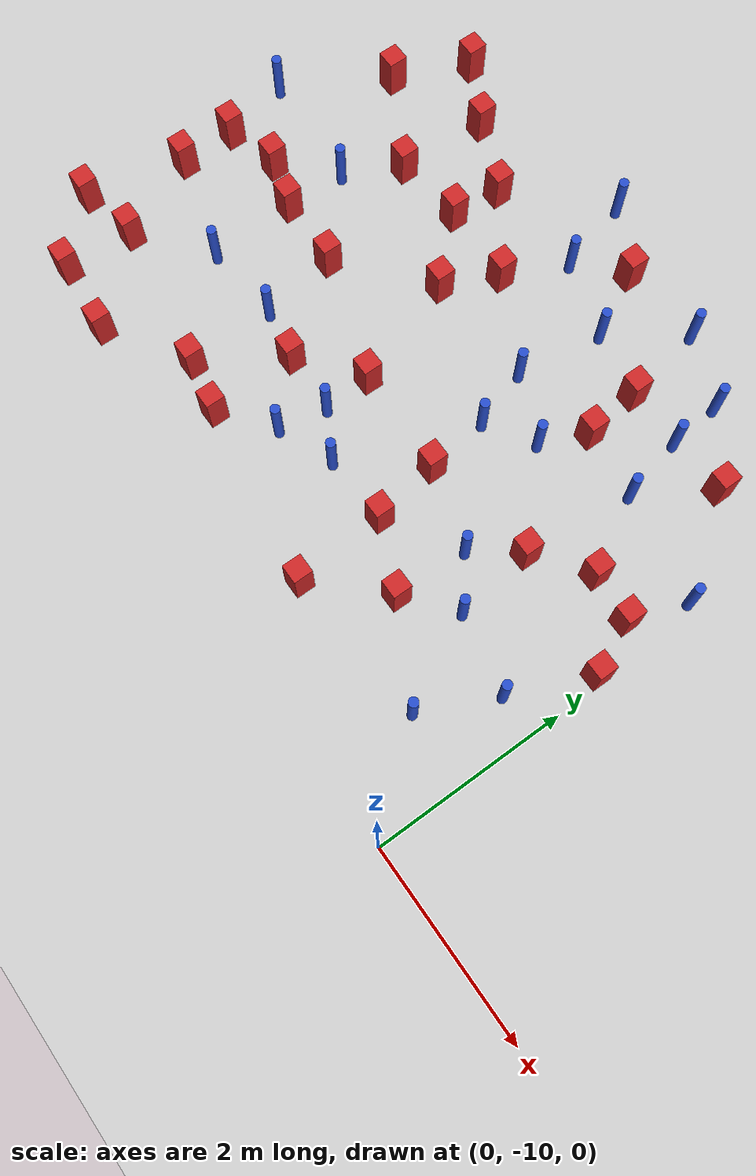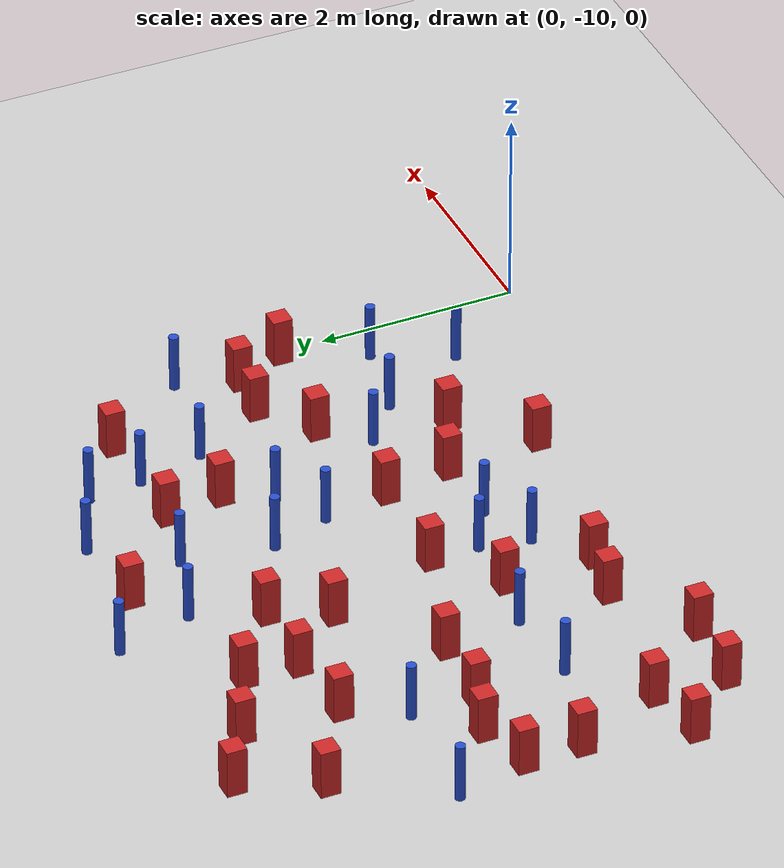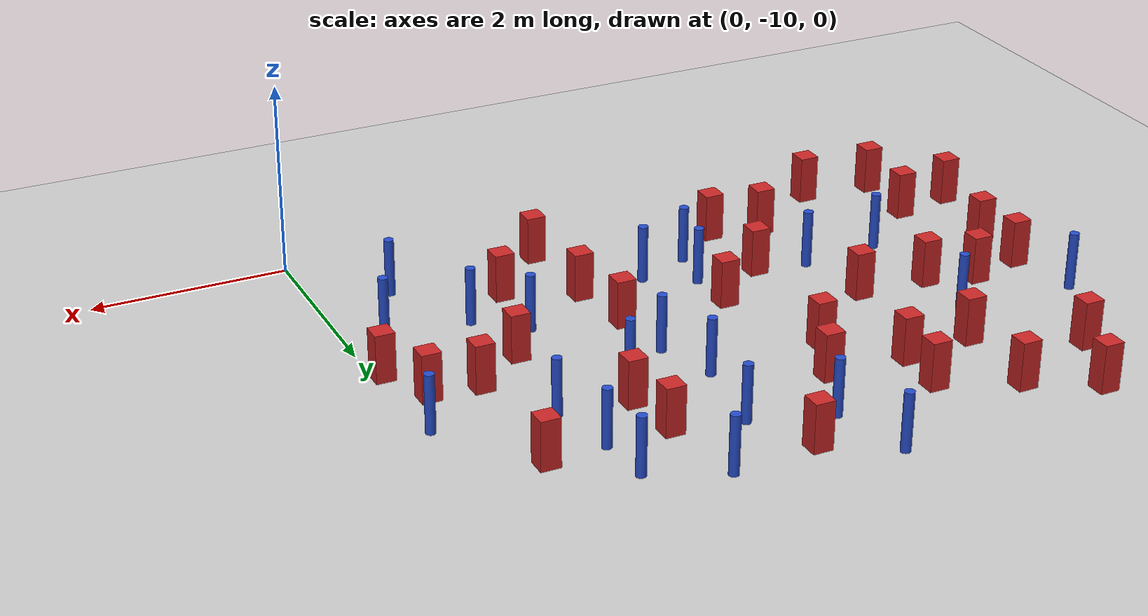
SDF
<sdf version="1.6">
 <world name="default">
  <model name="ground_plane">
   <static>1</static>
   <link name="link">
    <collision name="collision">
     <geometry><plane><normal>0 0 1</normal><size>100 100</size></plane></geometry>
     <surface><friction><ode><mu>100</mu><mu2>50</mu2></ode></friction></surface>
    </collision>
    <visual name="visual">
     <cast_shadows>0</cast_shadows>
     <geometry><plane><normal>0 0 1</normal><size>100 100</size></plane></geometry>
     <material>
      <ambient>1.0 1.0 1.0 1.0</ambient>
      <diffuse>0.8 0.8 0.8 1.0</diffuse>
      <specular>0.01 0.01 0.01 1.000000</specular>
     </material>
    </visual>
   </link>
  </model>
  <model name="square_post_obstacle2">
   <static>true</static>
   <pose>-4.26368688177 -8.88945568207 -6.11067671241e-07 -5.50515727128e-06 -8.79689657224e-07 2.37013304536e-05</pose>
   <link name="link">
    <pose>0 0 0.25 0 -0 0</pose>
    <inertial>
     <mass>100</mass>
     <inertia>
      <ixx>0.166667</ixx>
      <ixy>0</ixy>
      <ixz>0</ixz>
      <iyy>0.166667</iyy>
      <iyz>0</iyz>
      <izz>0.166667</izz>
     </inertia>
    </inertial>
    <collision name="collision"><geometry><box><size>.2 .2 .5</size></box></geometry></collision>
    <visual name="visual">
     <geometry><box><size>.2 .2 .5</size></box></geometry>
     <material>
      <script><name>Gazebo/Red</name><uri>file://media/materials/scripts/gazebo.material</uri></script>
     </material>
    </visual>
   </link>
  </model>
  <model name="pole_obstacle4">
   <static>true</static>
   <pose>-2.65251913917 -6.87422880931 -9.47619616065e-06 5.49618799738e-07 2.3631041406e-07 -1.55090534801e-07</pose>
   <link name="link">
    <pose>0 0 0.3 0 -0 0</pose>
    <inertial>
     <mass>1</mass>
     <inertia><ixx>0.145833</ixx><ixy>0</ixy><ixz>0</ixz><iyy>0.145833</iyy><iyz>0</iyz><izz>0.125</izz></inertia>
    </inertial>
    <collision name="collision">
     <geometry><cylinder><radius>0.05</radius><length>.6</length></cylinder></geometry>
    </collision>
    <visual name="visual">
     <geometry><cylinder><radius>0.05</radius><length>.6</length></cylinder></geometry>
     <material>
      <script><name>Gazebo/Blue</name><uri>file://media/materials/scripts/gazebo.material</uri></script>
     </material>
    </visual>
   </link>
  </model>
  <model name="pole_obstacle6">
   <static>true</static>
   <pose>-1.71180021635 -7.7803199983 -9.47619616065e-06 5.49618799737e-07 2.36310414061e-07 -1.550905348e-07</pose>
   <link name="link">
    <pose>0 0 0.3 0 -0 0</pose>
    <inertial>
     <mass>1</mass>
     <inertia><ixx>0.145833</ixx><ixy>0</ixy><ixz>0</ixz><iyy>0.145833</iyy><iyz>0</iyz><izz>0.125</izz></inertia>
    </inertial>
    <collision name="collision">
     <geometry><cylinder><radius>0.05</radius><length>.6</length></cylinder></geometry>
    </collision>
    <visual name="visual">
     <geometry><cylinder><radius>0.05</radius><length>.6</length></cylinder></geometry>
     <material>
      <script><name>Gazebo/Blue</name><uri>file://media/materials/scripts/gazebo.material</uri></script>
     </material>
    </visual>
   </link>
  </model>
  <model name="square_post_obstacle20">
   <static>true</static>
   <pose>-5.98654859498 -4.50883899803 -6.11067671241e-07 -5.50515727128e-06 -8.79689657224e-07 2.37013304536e-05</pose>
   <link name="link">
    <pose>0 0 0.25 0 -0 0</pose>
    <inertial>
     <mass>100</mass>
     <inertia>
      <ixx>0.166667</ixx>
      <ixy>0</ixy>
      <ixz>0</ixz>
      <iyy>0.166667</iyy>
      <iyz>0</iyz>
      <izz>0.166667</izz>
     </inertia>
    </inertial>
    <collision name="collision"><geometry><box><size>.2 .2 .5</size></box></geometry></collision>
    <visual name="visual">
     <geometry><box><size>.2 .2 .5</size></box></geometry>
     <material>
      <script><name>Gazebo/Red</name><uri>file://media/materials/scripts/gazebo.material</uri></script>
     </material>
    </visual>
   </link>
  </model>
  <model name="square_post_obstacle25">
   <static>true</static>
   <pose>-0.0867028003997 -7.50894193678 -6.11067671241e-07 -5.50515727128e-06 -8.79689657224e-07 2.37013304536e-05</pose>
   <link name="link">
    <pose>0 0 0.25 0 -0 0</pose>
    <inertial>
     <mass>100</mass>
     <inertia>
      <ixx>0.166667</ixx>
      <ixy>0</ixy>
      <ixz>0</ixz>
      <iyy>0.166667</iyy>
      <iyz>0</iyz>
      <izz>0.166667</izz>
     </inertia>
    </inertial>
    <collision name="collision"><geometry><box><size>.2 .2 .5</size></box></geometry></collision>
    <visual name="visual">
     <geometry><box><size>.2 .2 .5</size></box></geometry>
     <material>
      <script><name>Gazebo/Red</name><uri>file://media/materials/scripts/gazebo.material</uri></script>
     </material>
    </visual>
   </link>
  </model>
  <model name="pole_obstacle19">
   <static>true</static>
   <pose>-0.420252584287 -8.31891217827 -9.47619616065e-06 5.49618799737e-07 2.36310414031e-07 -1.55090534818e-07</pose>
   <link name="link">
    <pose>0 0 0.3 0 -0 0</pose>
    <inertial>
     <mass>1</mass>
     <inertia><ixx>0.145833</ixx><ixy>0</ixy><ixz>0</ixz><iyy>0.145833</iyy><iyz>0</iyz><izz>0.125</izz></inertia>
    </inertial>
    <collision name="collision">
     <geometry><cylinder><radius>0.05</radius><length>.6</length></cylinder></geometry>
    </collision>
    <visual name="visual">
     <geometry><cylinder><radius>0.05</radius><length>.6</length></cylinder></geometry>
     <material>
      <script><name>Gazebo/Blue</name><uri>file://media/materials/scripts/gazebo.material</uri></script>
     </material>
    </visual>
   </link>
  </model>
  <model name="pole_obstacle27">
   <static>true</static>
   <pose>-1.41031372814 -5.51074239256 -9.47619616065e-06 5.49618799737e-07 2.36310414061e-07 -1.550905348e-07</pose>
   <link name="link">
    <pose>0 0 0.3 0 -0 0</pose>
    <inertial>
     <mass>1</mass>
     <inertia><ixx>0.145833</ixx><ixy>0</ixy><ixz>0</ixz><iyy>0.145833</iyy><iyz>0</iyz><izz>0.125</izz></inertia>
    </inertial>
    <collision name="collision">
     <geometry><cylinder><radius>0.05</radius><length>.6</length></cylinder></geometry>
    </collision>
    <visual name="visual">
     <geometry><cylinder><radius>0.05</radius><length>.6</length></cylinder></geometry>
     <material>
      <script><name>Gazebo/Blue</name><uri>file://media/materials/scripts/gazebo.material</uri></script>
     </material>
    </visual>
   </link>
  </model>
  <model name="pole_obstacle36">
   <static>true</static>
   <pose>-1.24522728171 -6.18781245235 -9.47619616065e-06 5.49618799737e-07 2.36310414061e-07 -1.550905348e-07</pose>
   <link name="link">
    <pose>0 0 0.3 0 -0 0</pose>
    <inertial>
     <mass>1</mass>
     <inertia><ixx>0.145833</ixx><ixy>0</ixy><ixz>0</ixz><iyy>0.145833</iyy><iyz>0</iyz><izz>0.125</izz></inertia>
    </inertial>
    <collision name="collision">
     <geometry><cylinder><radius>0.05</radius><length>.6</length></cylinder></geometry>
    </collision>
    <visual name="visual">
     <geometry><cylinder><radius>0.05</radius><length>.6</length></cylinder></geometry>
     <material>
      <script><name>Gazebo/Blue</name><uri>file://media/materials/scripts/gazebo.material</uri></script>
     </material>
    </visual>
   </link>
  </model>
  <model name="square_post_obstacle36">
   <static>true</static>
   <pose>-6.7682676209 -7.01912997487 -6.11067671241e-07 -5.50515727128e-06 -8.79689657224e-07 2.37013304536e-05</pose>
   <link name="link">
    <pose>0 0 0.25 0 -0 0</pose>
    <inertial>
     <mass>100</mass>
     <inertia>
      <ixx>0.166667</ixx>
      <ixy>0</ixy>
      <ixz>0</ixz>
      <iyy>0.166667</iyy>
      <iyz>0</iyz>
      <izz>0.166667</izz>
     </inertia>
    </inertial>
    <collision name="collision"><geometry><box><size>.2 .2 .5</size></box></geometry></collision>
    <visual name="visual">
     <geometry><box><size>.2 .2 .5</size></box></geometry>
     <material>
      <script><name>Gazebo/Red</name><uri>file://media/materials/scripts/gazebo.material</uri></script>
     </material>
    </visual>
   </link>
  </model>
  <model name="square_post_obstacle37">
   <static>true</static>
   <pose>-6.2001604014 -6.87545379439 -6.11067671241e-07 -5.50515727128e-06 -8.79689657224e-07 2.37013304536e-05</pose>
   <link name="link">
    <pose>0 0 0.25 0 -0 0</pose>
    <inertial>
     <mass>100</mass>
     <inertia>
      <ixx>0.166667</ixx>
      <ixy>0</ixy>
      <ixz>0</ixz>
      <iyy>0.166667</iyy>
      <iyz>0</iyz>
      <izz>0.166667</izz>
     </inertia>
    </inertial>
    <collision name="collision"><geometry><box><size>.2 .2 .5</size></box></geometry></collision>
    <visual name="visual">
     <geometry><box><size>.2 .2 .5</size></box></geometry>
     <material>
      <script><name>Gazebo/Red</name><uri>file://media/materials/scripts/gazebo.material</uri></script>
     </material>
    </visual>
   </link>
  </model>
  <model name="pole_obstacle38">
   <static>true</static>
   <pose>-2.16754230576 -6.57102361847 -9.47619616065e-06 5.49618799738e-07 2.3631041406e-07 -1.55090534801e-07</pose>
   <link name="link">
    <pose>0 0 0.3 0 -0 0</pose>
    <inertial>
     <mass>1</mass>
     <inertia><ixx>0.145833</ixx><ixy>0</ixy><ixz>0</ixz><iyy>0.145833</iyy><iyz>0</iyz><izz>0.125</izz></inertia>
    </inertial>
    <collision name="collision">
     <geometry><cylinder><radius>0.05</radius><length>.6</length></cylinder></geometry>
    </collision>
    <visual name="visual">
     <geometry><cylinder><radius>0.05</radius><length>.6</length></cylinder></geometry>
     <material>
      <script><name>Gazebo/Blue</name><uri>file://media/materials/scripts/gazebo.material</uri></script>
     </material>
    </visual>
   </link>
  </model>
  <model name="square_post_obstacle45">
   <static>true</static>
   <pose>-1.36718611681 -7.33663645452 -6.11067671241e-07 -5.50515727128e-06 -8.79689657224e-07 2.37013304536e-05</pose>
   <link name="link">
    <pose>0 0 0.25 0 -0 0</pose>
    <inertial>
     <mass>100</mass>
     <inertia>
      <ixx>0.166667</ixx>
      <ixy>0</ixy>
      <ixz>0</ixz>
      <iyy>0.166667</iyy>
      <iyz>0</iyz>
      <izz>0.166667</izz>
     </inertia>
    </inertial>
    <collision name="collision"><geometry><box><size>.2 .2 .5</size></box></geometry></collision>
    <visual name="visual">
     <geometry><box><size>.2 .2 .5</size></box></geometry>
     <material>
      <script><name>Gazebo/Red</name><uri>file://media/materials/scripts/gazebo.material</uri></script>
     </material>
    </visual>
   </link>
  </model>
  <model name="pole_obstacle50">
   <static>true</static>
   <pose>-0.771396174465 -9.06985725789 -9.47619616065e-06 5.49618799737e-07 2.36310414038e-07 -1.55090534813e-07</pose>
   <link name="link">
    <pose>0 0 0.3 0 -0 0</pose>
    <inertial>
     <mass>1</mass>
     <inertia><ixx>0.145833</ixx><ixy>0</ixy><ixz>0</ixz><iyy>0.145833</iyy><iyz>0</iyz><izz>0.125</izz></inertia>
    </inertial>
    <collision name="collision">
     <geometry><cylinder><radius>0.05</radius><length>.6</length></cylinder></geometry>
    </collision>
    <visual name="visual">
     <geometry><cylinder><radius>0.05</radius><length>.6</length></cylinder></geometry>
     <material>
      <script><name>Gazebo/Blue</name><uri>file://media/materials/scripts/gazebo.material</uri></script>
     </material>
    </visual>
   </link>
  </model>
  <model name="pole_obstacle55">
   <static>true</static>
   <pose>-5.69469708251 -6.38586778591 -9.47619616065e-06 5.49618799737e-07 2.36310414037e-07 -1.55090534814e-07</pose>
   <link name="link">
    <pose>0 0 0.3 0 -0 0</pose>
    <inertial>
     <mass>1</mass>
     <inertia><ixx>0.145833</ixx><ixy>0</ixy><ixz>0</ixz><iyy>0.145833</iyy><iyz>0</iyz><izz>0.125</izz></inertia>
    </inertial>
    <collision name="collision">
     <geometry><cylinder><radius>0.05</radius><length>.6</length></cylinder></geometry>
    </collision>
    <visual name="visual">
     <geometry><cylinder><radius>0.05</radius><length>.6</length></cylinder></geometry>
     <material>
      <script><name>Gazebo/Blue</name><uri>file://media/materials/scripts/gazebo.material</uri></script>
     </material>
    </visual>
   </link>
  </model>
  <model name="square_post_obstacle64">
   <static>true</static>
   <pose>-1.96166137287 -6.0991282528 -6.11067671241e-07 -5.50515727128e-06 -8.79689657224e-07 2.37013304536e-05</pose>
   <link name="link">
    <pose>0 0 0.25 0 -0 0</pose>
    <inertial>
     <mass>100</mass>
     <inertia>
      <ixx>0.166667</ixx>
      <ixy>0</ixy>
      <ixz>0</ixz>
      <iyy>0.166667</iyy>
      <iyz>0</iyz>
      <izz>0.166667</izz>
     </inertia>
    </inertial>
    <collision name="collision"><geometry><box><size>.2 .2 .5</size></box></geometry></collision>
    <visual name="visual">
     <geometry><box><size>.2 .2 .5</size></box></geometry>
     <material>
      <script><name>Gazebo/Red</name><uri>file://media/materials/scripts/gazebo.material</uri></script>
     </material>
    </visual>
   </link>
  </model>
  <model name="square_post_obstacle67">
   <static>true</static>
   <pose>-2.03801471484 -5.51106433307 -6.11067671241e-07 -5.50515727128e-06 -8.79689657224e-07 2.37013304536e-05</pose>
   <link name="link">
    <pose>0 0 0.25 0 -0 0</pose>
    <inertial>
     <mass>100</mass>
     <inertia>
      <ixx>0.166667</ixx>
      <ixy>0</ixy>
      <ixz>0</ixz>
      <iyy>0.166667</iyy>
      <iyz>0</iyz>
      <izz>0.166667</izz>
     </inertia>
    </inertial>
    <collision name="collision"><geometry><box><size>.2 .2 .5</size></box></geometry></collision>
    <visual name="visual">
     <geometry><box><size>.2 .2 .5</size></box></geometry>
     <material>
      <script><name>Gazebo/Red</name><uri>file://media/materials/scripts/gazebo.material</uri></script>
     </material>
    </visual>
   </link>
  </model>
  <model name="square_post_obstacle78">
   <static>true</static>
   <pose>-4.28863827498 -7.97021116407 -6.11067671241e-07 -5.50515727128e-06 -8.79689657224e-07 2.37013304536e-05</pose>
   <link name="link">
    <pose>0 0 0.25 0 -0 0</pose>
    <inertial>
     <mass>100</mass>
     <inertia>
      <ixx>0.166667</ixx>
      <ixy>0</ixy>
      <ixz>0</ixz>
      <iyy>0.166667</iyy>
      <iyz>0</iyz>
      <izz>0.166667</izz>
     </inertia>
    </inertial>
    <collision name="collision"><geometry><box><size>.2 .2 .5</size></box></geometry></collision>
    <visual name="visual">
     <geometry><box><size>.2 .2 .5</size></box></geometry>
     <material>
      <script><name>Gazebo/Red</name><uri>file://media/materials/scripts/gazebo.material</uri></script>
     </material>
    </visual>
   </link>
  </model>
  <model name="pole_obstacle83">
   <static>true</static>
   <pose>-4.82534411164 -7.86880731986 -9.47619616065e-06 5.49618799737e-07 2.36310414037e-07 -1.55090534814e-07</pose>
   <link name="link">
    <pose>0 0 0.3 0 -0 0</pose>
    <inertial>
     <mass>1</mass>
     <inertia><ixx>0.145833</ixx><ixy>0</ixy><ixz>0</ixz><iyy>0.145833</iyy><iyz>0</iyz><izz>0.125</izz></inertia>
    </inertial>
    <collision name="collision">
     <geometry><cylinder><radius>0.05</radius><length>.6</length></cylinder></geometry>
    </collision>
    <visual name="visual">
     <geometry><cylinder><radius>0.05</radius><length>.6</length></cylinder></geometry>
     <material>
      <script><name>Gazebo/Blue</name><uri>file://media/materials/scripts/gazebo.material</uri></script>
     </material>
    </visual>
   </link>
  </model>
  <model name="square_post_obstacle80">
   <static>true</static>
   <pose>-4.80720924135 -8.78046299355 -6.11067671241e-07 -5.50515727128e-06 -8.79689657224e-07 2.37013304536e-05</pose>
   <link name="link">
    <pose>0 0 0.25 0 -0 0</pose>
    <inertial>
     <mass>100</mass>
     <inertia>
      <ixx>0.166667</ixx>
      <ixy>0</ixy>
      <ixz>0</ixz>
      <iyy>0.166667</iyy>
      <iyz>0</iyz>
      <izz>0.166667</izz>
     </inertia>
    </inertial>
    <collision name="collision"><geometry><box><size>.2 .2 .5</size></box></geometry></collision>
    <visual name="visual">
     <geometry><box><size>.2 .2 .5</size></box></geometry>
     <material>
      <script><name>Gazebo/Red</name><uri>file://media/materials/scripts/gazebo.material</uri></script>
     </material>
    </visual>
   </link>
  </model>
  <model name="square_post_obstacle81">
   <static>true</static>
   <pose>-4.64449683924 -5.73351028012 -6.11067671241e-07 -5.50515727128e-06 -8.79689657224e-07 2.37013304536e-05</pose>
   <link name="link">
    <pose>0 0 0.25 0 -0 0</pose>
    <inertial>
     <mass>100</mass>
     <inertia>
      <ixx>0.166667</ixx>
      <ixy>0</ixy>
      <ixz>0</ixz>
      <iyy>0.166667</iyy>
      <iyz>0</iyz>
      <izz>0.166667</izz>
     </inertia>
    </inertial>
    <collision name="collision"><geometry><box><size>.2 .2 .5</size></box></geometry></collision>
    <visual name="visual">
     <geometry><box><size>.2 .2 .5</size></box></geometry>
     <material>
      <script><name>Gazebo/Red</name><uri>file://media/materials/scripts/gazebo.material</uri></script>
     </material>
    </visual>
   </link>
  </model>
  <model name="pole_obstacle89">
   <static>true</static>
   <pose>-3.51373231632 -5.11560259416 -9.47619616065e-06 5.49618799738e-07 2.3631041406e-07 -1.55090534801e-07</pose>
   <link name="link">
    <pose>0 0 0.3 0 -0 0</pose>
    <inertial>
     <mass>1</mass>
     <inertia><ixx>0.145833</ixx><ixy>0</ixy><ixz>0</ixz><iyy>0.145833</iyy><iyz>0</iyz><izz>0.125</izz></inertia>
    </inertial>
    <collision name="collision">
     <geometry><cylinder><radius>0.05</radius><length>.6</length></cylinder></geometry>
    </collision>
    <visual name="visual">
     <geometry><cylinder><radius>0.05</radius><length>.6</length></cylinder></geometry>
     <material>
      <script><name>Gazebo/Blue</name><uri>file://media/materials/scripts/gazebo.material</uri></script>
     </material>
    </visual>
   </link>
  </model>
  <model name="square_post_obstacle88">
   <static>true</static>
   <pose>-6.34111263083 -5.2675570084 -6.11067671241e-07 -5.50515727128e-06 -8.79689657224e-07 2.37013304536e-05</pose>
   <link name="link">
    <pose>0 0 0.25 0 -0 0</pose>
    <inertial>
     <mass>100</mass>
     <inertia>
      <ixx>0.166667</ixx>
      <ixy>0</ixy>
      <ixz>0</ixz>
      <iyy>0.166667</iyy>
      <iyz>0</iyz>
      <izz>0.166667</izz>
     </inertia>
    </inertial>
    <collision name="collision"><geometry><box><size>.2 .2 .5</size></box></geometry></collision>
    <visual name="visual">
     <geometry><box><size>.2 .2 .5</size></box></geometry>
     <material>
      <script><name>Gazebo/Red</name><uri>file://media/materials/scripts/gazebo.material</uri></script>
     </material>
    </visual>
   </link>
  </model>
  <model name="square_post_obstacle93">
   <static>true</static>
   <pose>-2.44804167495 -8.22750345573 -6.11067671241e-07 -5.50515727128e-06 -8.79689657224e-07 2.37013304536e-05</pose>
   <link name="link">
    <pose>0 0 0.25 0 -0 0</pose>
    <inertial>
     <mass>100</mass>
     <inertia>
      <ixx>0.166667</ixx>
      <ixy>0</ixy>
      <ixz>0</ixz>
      <iyy>0.166667</iyy>
      <iyz>0</iyz>
      <izz>0.166667</izz>
     </inertia>
    </inertial>
    <collision name="collision"><geometry><box><size>.2 .2 .5</size></box></geometry></collision>
    <visual name="visual">
     <geometry><box><size>.2 .2 .5</size></box></geometry>
     <material>
      <script><name>Gazebo/Red</name><uri>file://media/materials/scripts/gazebo.material</uri></script>
     </material>
    </visual>
   </link>
  </model>
  <model name="pole_obstacle108">
   <static>true</static>
   <pose>-1.2488636676 -8.15353249313 -9.47619616065e-06 5.49618799737e-07 2.36310414046e-07 -1.55090534809e-07</pose>
   <link name="link">
    <pose>0 0 0.3 0 -0 0</pose>
    <inertial>
     <mass>1</mass>
     <inertia><ixx>0.145833</ixx><ixy>0</ixy><ixz>0</ixz><iyy>0.145833</iyy><iyz>0</iyz><izz>0.125</izz></inertia>
    </inertial>
    <collision name="collision">
     <geometry><cylinder><radius>0.05</radius><length>.6</length></cylinder></geometry>
    </collision>
    <visual name="visual">
     <geometry><cylinder><radius>0.05</radius><length>.6</length></cylinder></geometry>
     <material>
      <script><name>Gazebo/Blue</name><uri>file://media/materials/scripts/gazebo.material</uri></script>
     </material>
    </visual>
   </link>
  </model>
  <model name="square_post_obstacle98">
   <static>true</static>
   <pose>-1.74143954959 -8.5451208864 -6.11067671241e-07 -5.50515727128e-06 -8.79689657224e-07 2.37013304536e-05</pose>
   <link name="link">
    <pose>0 0 0.25 0 -0 0</pose>
    <inertial>
     <mass>100</mass>
     <inertia>
      <ixx>0.166667</ixx>
      <ixy>0</ixy>
      <ixz>0</ixz>
      <iyy>0.166667</iyy>
      <iyz>0</iyz>
      <izz>0.166667</izz>
     </inertia>
    </inertial>
    <collision name="collision"><geometry><box><size>.2 .2 .5</size></box></geometry></collision>
    <visual name="visual">
     <geometry><box><size>.2 .2 .5</size></box></geometry>
     <material>
      <script><name>Gazebo/Red</name><uri>file://media/materials/scripts/gazebo.material</uri></script>
     </material>
    </visual>
   </link>
  </model>
  <model name="square_post_obstacle104">
   <static>true</static>
   <pose>-6.98773264546 -8.62042220134 -6.11067671241e-07 -5.50515727128e-06 -8.79689657224e-07 2.37013304536e-05</pose>
   <link name="link">
    <pose>0 0 0.25 0 -0 0</pose>
    <inertial>
     <mass>100</mass>
     <inertia>
      <ixx>0.166667</ixx>
      <ixy>0</ixy>
      <ixz>0</ixz>
      <iyy>0.166667</iyy>
      <iyz>0</iyz>
      <izz>0.166667</izz>
     </inertia>
    </inertial>
    <collision name="collision"><geometry><box><size>.2 .2 .5</size></box></geometry></collision>
    <visual name="visual">
     <geometry><box><size>.2 .2 .5</size></box></geometry>
     <material>
      <script><name>Gazebo/Red</name><uri>file://media/materials/scripts/gazebo.material</uri></script>
     </material>
    </visual>
   </link>
  </model>
  <model name="square_post_obstacle106">
   <static>true</static>
   <pose>-3.67410699914 -7.4887678141 -6.11067671241e-07 -5.50515727128e-06 -8.79689657224e-07 2.37013304536e-05</pose>
   <link name="link">
    <pose>0 0 0.25 0 -0 0</pose>
    <inertial>
     <mass>100</mass>
     <inertia>
      <ixx>0.166667</ixx>
      <ixy>0</ixy>
      <ixz>0</ixz>
      <iyy>0.166667</iyy>
      <iyz>0</iyz>
      <izz>0.166667</izz>
     </inertia>
    </inertial>
    <collision name="collision"><geometry><box><size>.2 .2 .5</size></box></geometry></collision>
    <visual name="visual">
     <geometry><box><size>.2 .2 .5</size></box></geometry>
     <material>
      <script><name>Gazebo/Red</name><uri>file://media/materials/scripts/gazebo.material</uri></script>
     </material>
    </visual>
   </link>
  </model>
  <model name="square_post_obstacle109">
   <static>true</static>
   <pose>-5.64103897236 -9.30267233406 -6.11067671241e-07 -5.50515727128e-06 -8.79689657224e-07 2.37013304536e-05</pose>
   <link name="link">
    <pose>0 0 0.25 0 -0 0</pose>
    <inertial>
     <mass>100</mass>
     <inertia>
      <ixx>0.166667</ixx>
      <ixy>0</ixy>
      <ixz>0</ixz>
      <iyy>0.166667</iyy>
      <iyz>0</iyz>
      <izz>0.166667</izz>
     </inertia>
    </inertial>
    <collision name="collision"><geometry><box><size>.2 .2 .5</size></box></geometry></collision>
    <visual name="visual">
     <geometry><box><size>.2 .2 .5</size></box></geometry>
     <material>
      <script><name>Gazebo/Red</name><uri>file://media/materials/scripts/gazebo.material</uri></script>
     </material>
    </visual>
   </link>
  </model>
  <model name="square_post_obstacle114">
   <static>true</static>
   <pose>-6.36509238511 -8.50389852651 -6.11067671241e-07 -5.50515727128e-06 -8.79689657224e-07 2.37013304536e-05</pose>
   <link name="link">
    <pose>0 0 0.25 0 -0 0</pose>
    <inertial>
     <mass>100</mass>
     <inertia>
      <ixx>0.166667</ixx>
      <ixy>0</ixy>
      <ixz>0</ixz>
      <iyy>0.166667</iyy>
      <iyz>0</iyz>
      <izz>0.166667</izz>
     </inertia>
    </inertial>
    <collision name="collision"><geometry><box><size>.2 .2 .5</size></box></geometry></collision>
    <visual name="visual">
     <geometry><box><size>.2 .2 .5</size></box></geometry>
     <material>
      <script><name>Gazebo/Red</name><uri>file://media/materials/scripts/gazebo.material</uri></script>
     </material>
    </visual>
   </link>
  </model>
  <model name="pole_obstacle132">
   <static>true</static>
   <pose>-2.72236623695 -5.36613210382 -9.47619616065e-06 5.49618799738e-07 2.3631041406e-07 -1.55090534801e-07</pose>
   <link name="link">
    <pose>0 0 0.3 0 -0 0</pose>
    <inertial>
     <mass>1</mass>
     <inertia><ixx>0.145833</ixx><ixy>0</ixy><ixz>0</ixz><iyy>0.145833</iyy><iyz>0</iyz><izz>0.125</izz></inertia>
    </inertial>
    <collision name="collision">
     <geometry><cylinder><radius>0.05</radius><length>.6</length></cylinder></geometry>
    </collision>
    <visual name="visual">
     <geometry><cylinder><radius>0.05</radius><length>.6</length></cylinder></geometry>
     <material>
      <script><name>Gazebo/Blue</name><uri>file://media/materials/scripts/gazebo.material</uri></script>
     </material>
    </visual>
   </link>
  </model>
  <model name="pole_obstacle139">
   <static>true</static>
   <pose>-0.111055015502 -6.39953997122 -9.47619616065e-06 5.49618799737e-07 2.36310414062e-07 -1.550905348e-07</pose>
   <link name="link">
    <pose>0 0 0.3 0 -0 0</pose>
    <inertial>
     <mass>1</mass>
     <inertia><ixx>0.145833</ixx><ixy>0</ixy><ixz>0</ixz><iyy>0.145833</iyy><iyz>0</iyz><izz>0.125</izz></inertia>
    </inertial>
    <collision name="collision">
     <geometry><cylinder><radius>0.05</radius><length>.6</length></cylinder></geometry>
    </collision>
    <visual name="visual">
     <geometry><cylinder><radius>0.05</radius><length>.6</length></cylinder></geometry>
     <material>
      <script><name>Gazebo/Blue</name><uri>file://media/materials/scripts/gazebo.material</uri></script>
     </material>
    </visual>
   </link>
  </model>
  <model name="square_post_obstacle125">
   <static>true</static>
   <pose>-0.808226586177 -5.46899903353 -6.11067671241e-07 -5.50515727128e-06 -8.79689657224e-07 2.37013304536e-05</pose>
   <link name="link">
    <pose>0 0 0.25 0 -0 0</pose>
    <inertial>
     <mass>100</mass>
     <inertia>
      <ixx>0.166667</ixx>
      <ixy>0</ixy>
      <ixz>0</ixz>
      <iyy>0.166667</iyy>
      <iyz>0</iyz>
      <izz>0.166667</izz>
     </inertia>
    </inertial>
    <collision name="collision"><geometry><box><size>.2 .2 .5</size></box></geometry></collision>
    <visual name="visual">
     <geometry><box><size>.2 .2 .5</size></box></geometry>
     <material>
      <script><name>Gazebo/Red</name><uri>file://media/materials/scripts/gazebo.material</uri></script>
     </material>
    </visual>
   </link>
  </model>
  <model name="square_post_obstacle126">
   <static>true</static>
   <pose>-0.330319967853 -6.9839506741 -6.11067671241e-07 -5.50515727128e-06 -8.79689657224e-07 2.37013304536e-05</pose>
   <link name="link">
    <pose>0 0 0.25 0 -0 0</pose>
    <inertial>
     <mass>100</mass>
     <inertia>
      <ixx>0.166667</ixx>
      <ixy>0</ixy>
      <ixz>0</ixz>
      <iyy>0.166667</iyy>
      <iyz>0</iyz>
      <izz>0.166667</izz>
     </inertia>
    </inertial>
    <collision name="collision"><geometry><box><size>.2 .2 .5</size></box></geometry></collision>
    <visual name="visual">
     <geometry><box><size>.2 .2 .5</size></box></geometry>
     <material>
      <script><name>Gazebo/Red</name><uri>file://media/materials/scripts/gazebo.material</uri></script>
     </material>
    </visual>
   </link>
  </model>
  <model name="pole_obstacle149">
   <static>true</static>
   <pose>-2.19304561232 -4.64116421839 -9.47619616065e-06 5.49618799738e-07 2.3631041406e-07 -1.55090534801e-07</pose>
   <link name="link">
    <pose>0 0 0.3 0 -0 0</pose>
    <inertial>
     <mass>1</mass>
     <inertia><ixx>0.145833</ixx><ixy>0</ixy><ixz>0</ixz><iyy>0.145833</iyy><iyz>0</iyz><izz>0.125</izz></inertia>
    </inertial>
    <collision name="collision">
     <geometry><cylinder><radius>0.05</radius><length>.6</length></cylinder></geometry>
    </collision>
    <visual name="visual">
     <geometry><cylinder><radius>0.05</radius><length>.6</length></cylinder></geometry>
     <material>
      <script><name>Gazebo/Blue</name><uri>file://media/materials/scripts/gazebo.material</uri></script>
     </material>
    </visual>
   </link>
  </model>
  <model name="pole_obstacle153">
   <static>true</static>
   <pose>-5.66901662251 -7.93727640312 -9.47619616065e-06 5.49618799737e-07 2.36310414037e-07 -1.55090534814e-07</pose>
   <link name="link">
    <pose>0 0 0.3 0 -0 0</pose>
    <inertial>
     <mass>1</mass>
     <inertia><ixx>0.145833</ixx><ixy>0</ixy><ixz>0</ixz><iyy>0.145833</iyy><iyz>0</iyz><izz>0.125</izz></inertia>
    </inertial>
    <collision name="collision">
     <geometry><cylinder><radius>0.05</radius><length>.6</length></cylinder></geometry>
    </collision>
    <visual name="visual">
     <geometry><cylinder><radius>0.05</radius><length>.6</length></cylinder></geometry>
     <material>
      <script><name>Gazebo/Blue</name><uri>file://media/materials/scripts/gazebo.material</uri></script>
     </material>
    </visual>
   </link>
  </model>
  <model name="square_post_obstacle147">
   <static>true</static>
   <pose>-5.34440337916 -4.86626122761 -6.11067671241e-07 -5.50515727128e-06 -8.79689657224e-07 2.37013304536e-05</pose>
   <link name="link">
    <pose>0 0 0.25 0 -0 0</pose>
    <inertial>
     <mass>100</mass>
     <inertia>
      <ixx>0.166667</ixx>
      <ixy>0</ixy>
      <ixz>0</ixz>
      <iyy>0.166667</iyy>
      <iyz>0</iyz>
      <izz>0.166667</izz>
     </inertia>
    </inertial>
    <collision name="collision"><geometry><box><size>.2 .2 .5</size></box></geometry></collision>
    <visual name="visual">
     <geometry><box><size>.2 .2 .5</size></box></geometry>
     <material>
      <script><name>Gazebo/Red</name><uri>file://media/materials/scripts/gazebo.material</uri></script>
     </material>
    </visual>
   </link>
  </model>
  <model name="square_post_obstacle156">
   <static>true</static>
   <pose>-2.37557077621 -9.19051661706 -6.11067671241e-07 -5.50515727128e-06 -8.79689657224e-07 2.37013304536e-05</pose>
   <link name="link">
    <pose>0 0 0.25 0 -0 0</pose>
    <inertial>
     <mass>100</mass>
     <inertia>
      <ixx>0.166667</ixx>
      <ixy>0</ixy>
      <ixz>0</ixz>
      <iyy>0.166667</iyy>
      <iyz>0</iyz>
      <izz>0.166667</izz>
     </inertia>
    </inertial>
    <collision name="collision"><geometry><box><size>.2 .2 .5</size></box></geometry></collision>
    <visual name="visual">
     <geometry><box><size>.2 .2 .5</size></box></geometry>
     <material>
      <script><name>Gazebo/Red</name><uri>file://media/materials/scripts/gazebo.material</uri></script>
     </material>
    </visual>
   </link>
  </model>
  <model name="square_post_obstacle158">
   <static>true</static>
   <pose>-4.07325018744 -6.33272167511 -6.11067671241e-07 -5.50515727128e-06 -8.79689657224e-07 2.37013304536e-05</pose>
   <link name="link">
    <pose>0 0 0.25 0 -0 0</pose>
    <inertial>
     <mass>100</mass>
     <inertia>
      <ixx>0.166667</ixx>
      <ixy>0</ixy>
      <ixz>0</ixz>
      <iyy>0.166667</iyy>
      <iyz>0</iyz>
      <izz>0.166667</izz>
     </inertia>
    </inertial>
    <collision name="collision"><geometry><box><size>.2 .2 .5</size></box></geometry></collision>
    <visual name="visual">
     <geometry><box><size>.2 .2 .5</size></box></geometry>
     <material>
      <script><name>Gazebo/Red</name><uri>file://media/materials/scripts/gazebo.material</uri></script>
     </material>
    </visual>
   </link>
  </model>
  <model name="pole_obstacle169">
   <static>true</static>
   <pose>-1.46588082182 -4.96284460267 -9.47619616065e-06 5.49618799737e-07 2.36310414061e-07 -1.550905348e-07</pose>
   <link name="link">
    <pose>0 0 0.3 0 -0 0</pose>
    <inertial>
     <mass>1</mass>
     <inertia><ixx>0.145833</ixx><ixy>0</ixy><ixz>0</ixz><iyy>0.145833</iyy><iyz>0</iyz><izz>0.125</izz></inertia>
    </inertial>
    <collision name="collision">
     <geometry><cylinder><radius>0.05</radius><length>.6</length></cylinder></geometry>
    </collision>
    <visual name="visual">
     <geometry><cylinder><radius>0.05</radius><length>.6</length></cylinder></geometry>
     <material>
      <script><name>Gazebo/Blue</name><uri>file://media/materials/scripts/gazebo.material</uri></script>
     </material>
    </visual>
   </link>
  </model>
  <model name="square_post_obstacle161">
   <static>true</static>
   <pose>-6.40081535426 -9.22088720512 -6.11067671241e-07 -5.50515727128e-06 -8.79689657224e-07 2.37013304536e-05</pose>
   <link name="link">
    <pose>0 0 0.25 0 -0 0</pose>
    <inertial>
     <mass>100</mass>
     <inertia>
      <ixx>0.166667</ixx>
      <ixy>0</ixy>
      <ixz>0</ixz>
      <iyy>0.166667</iyy>
      <iyz>0</iyz>
      <izz>0.166667</izz>
     </inertia>
    </inertial>
    <collision name="collision"><geometry><box><size>.2 .2 .5</size></box></geometry></collision>
    <visual name="visual">
     <geometry><box><size>.2 .2 .5</size></box></geometry>
     <material>
      <script><name>Gazebo/Red</name><uri>file://media/materials/scripts/gazebo.material</uri></script>
     </material>
    </visual>
   </link>
  </model>
  <model name="square_post_obstacle169">
   <static>true</static>
   <pose>-5.70598592831 -7.02665069981 -6.11067671241e-07 -5.50515727128e-06 -8.79689657224e-07 2.37013304536e-05</pose>
   <link name="link">
    <pose>0 0 0.25 0 -0 0</pose>
    <inertial>
     <mass>100</mass>
     <inertia>
      <ixx>0.166667</ixx>
      <ixy>0</ixy>
      <ixz>0</ixz>
      <iyy>0.166667</iyy>
      <iyz>0</iyz>
      <izz>0.166667</izz>
     </inertia>
    </inertial>
    <collision name="collision"><geometry><box><size>.2 .2 .5</size></box></geometry></collision>
    <visual name="visual">
     <geometry><box><size>.2 .2 .5</size></box></geometry>
     <material>
      <script><name>Gazebo/Red</name><uri>file://media/materials/scripts/gazebo.material</uri></script>
     </material>
    </visual>
   </link>
  </model>
  <model name="pole_obstacle181">
   <static>true</static>
   <pose>-3.64668113412 -7.99748568428 -9.47619616065e-06 5.49618799737e-07 2.36310414055e-07 -1.55090534804e-07</pose>
   <link name="link">
    <pose>0 0 0.3 0 -0 0</pose>
    <inertial>
     <mass>1</mass>
     <inertia><ixx>0.145833</ixx><ixy>0</ixy><ixz>0</ixz><iyy>0.145833</iyy><iyz>0</iyz><izz>0.125</izz></inertia>
    </inertial>
    <collision name="collision">
     <geometry><cylinder><radius>0.05</radius><length>.6</length></cylinder></geometry>
    </collision>
    <visual name="visual">
     <geometry><cylinder><radius>0.05</radius><length>.6</length></cylinder></geometry>
     <material>
      <script><name>Gazebo/Blue</name><uri>file://media/materials/scripts/gazebo.material</uri></script>
     </material>
    </visual>
   </link>
  </model>
  <model name="pole_obstacle183">
   <static>true</static>
   <pose>-2.85556602261 -6.26878580037 -9.47619616065e-06 5.49618799738e-07 2.3631041406e-07 -1.55090534801e-07</pose>
   <link name="link">
    <pose>0 0 0.3 0 -0 0</pose>
    <inertial>
     <mass>1</mass>
     <inertia><ixx>0.145833</ixx><ixy>0</ixy><ixz>0</ixz><iyy>0.145833</iyy><iyz>0</iyz><izz>0.125</izz></inertia>
    </inertial>
    <collision name="collision">
     <geometry><cylinder><radius>0.05</radius><length>.6</length></cylinder></geometry>
    </collision>
    <visual name="visual">
     <geometry><cylinder><radius>0.05</radius><length>.6</length></cylinder></geometry>
     <material>
      <script><name>Gazebo/Blue</name><uri>file://media/materials/scripts/gazebo.material</uri></script>
     </material>
    </visual>
   </link>
  </model>
  <model name="square_post_obstacle188">
   <static>true</static>
   <pose>-5.39264690168 -5.8096983384 -6.11067671241e-07 -5.50515727128e-06 -8.79689657224e-07 2.37013304536e-05</pose>
   <link name="link">
    <pose>0 0 0.25 0 -0 0</pose>
    <inertial>
     <mass>100</mass>
     <inertia>
      <ixx>0.166667</ixx>
      <ixy>0</ixy>
      <ixz>0</ixz>
      <iyy>0.166667</iyy>
      <iyz>0</iyz>
      <izz>0.166667</izz>
     </inertia>
    </inertial>
    <collision name="collision"><geometry><box><size>.2 .2 .5</size></box></geometry></collision>
    <visual name="visual">
     <geometry><box><size>.2 .2 .5</size></box></geometry>
     <material>
      <script><name>Gazebo/Red</name><uri>file://media/materials/scripts/gazebo.material</uri></script>
     </material>
    </visual>
   </link>
  </model>
  <model name="square_post_obstacle192">
   <static>true</static>
   <pose>-3.07422899329 -4.71955370875 -6.11067671241e-07 -5.50515727128e-06 -8.79689657224e-07 2.37013304536e-05</pose>
   <link name="link">
    <pose>0 0 0.25 0 -0 0</pose>
    <inertial>
     <mass>100</mass>
     <inertia>
      <ixx>0.166667</ixx>
      <ixy>0</ixy>
      <ixz>0</ixz>
      <iyy>0.166667</iyy>
      <iyz>0</iyz>
      <izz>0.166667</izz>
     </inertia>
    </inertial>
    <collision name="collision"><geometry><box><size>.2 .2 .5</size></box></geometry></collision>
    <visual name="visual">
     <geometry><box><size>.2 .2 .5</size></box></geometry>
     <material>
      <script><name>Gazebo/Red</name><uri>file://media/materials/scripts/gazebo.material</uri></script>
     </material>
    </visual>
   </link>
  </model>
  <model name="square_post_obstacle193">
   <static>true</static>
   <pose>-2.56837423735 -7.53343230718 -6.11067671241e-07 -5.50515727128e-06 -8.79689657224e-07 2.37013304536e-05</pose>
   <link name="link">
    <pose>0 0 0.25 0 -0 0</pose>
    <inertial>
     <mass>100</mass>
     <inertia>
      <ixx>0.166667</ixx>
      <ixy>0</ixy>
      <ixz>0</ixz>
      <iyy>0.166667</iyy>
      <iyz>0</iyz>
      <izz>0.166667</izz>
     </inertia>
    </inertial>
    <collision name="collision"><geometry><box><size>.2 .2 .5</size></box></geometry></collision>
    <visual name="visual">
     <geometry><box><size>.2 .2 .5</size></box></geometry>
     <material>
      <script><name>Gazebo/Red</name><uri>file://media/materials/scripts/gazebo.material</uri></script>
     </material>
    </visual>
   </link>
  </model>
  <model name="pole_obstacle190">
   <static>true</static>
   <pose>-3.16488591973 -8.27048443836 -9.47619616065e-06 5.49618799738e-07 2.36310414059e-07 -1.55090534802e-07</pose>
   <link name="link">
    <pose>0 0 0.3 0 -0 0</pose>
    <inertial>
     <mass>1</mass>
     <inertia><ixx>0.145833</ixx><ixy>0</ixy><ixz>0</ixz><iyy>0.145833</iyy><iyz>0</iyz><izz>0.125</izz></inertia>
    </inertial>
    <collision name="collision">
     <geometry><cylinder><radius>0.05</radius><length>.6</length></cylinder></geometry>
    </collision>
    <visual name="visual">
     <geometry><cylinder><radius>0.05</radius><length>.6</length></cylinder></geometry>
     <material>
      <script><name>Gazebo/Blue</name><uri>file://media/materials/scripts/gazebo.material</uri></script>
     </material>
    </visual>
   </link>
  </model>
  <model name="pole_obstacle191">
   <static>true</static>
   <pose>-3.73533511958 -4.3395703754 -9.47619616065e-06 5.49618799738e-07 2.3631041406e-07 -1.55090534801e-07</pose>
   <link name="link">
    <pose>0 0 0.3 0 -0 0</pose>
    <inertial>
     <mass>1</mass>
     <inertia><ixx>0.145833</ixx><ixy>0</ixy><ixz>0</ixz><iyy>0.145833</iyy><iyz>0</iyz><izz>0.125</izz></inertia>
    </inertial>
    <collision name="collision">
     <geometry><cylinder><radius>0.05</radius><length>.6</length></cylinder></geometry>
    </collision>
    <visual name="visual">
     <geometry><cylinder><radius>0.05</radius><length>.6</length></cylinder></geometry>
     <material>
      <script><name>Gazebo/Blue</name><uri>file://media/materials/scripts/gazebo.material</uri></script>
     </material>
    </visual>
   </link>
  </model>
  <model name="pole_obstacle194">
   <static>true</static>
   <pose>-6.93525701327 -6.30831530176 -9.47619616065e-06 5.49618799737e-07 2.36310414037e-07 -1.55090534814e-07</pose>
   <link name="link">
    <pose>0 0 0.3 0 -0 0</pose>
    <inertial>
     <mass>1</mass>
     <inertia><ixx>0.145833</ixx><ixy>0</ixy><ixz>0</ixz><iyy>0.145833</iyy><iyz>0</iyz><izz>0.125</izz></inertia>
    </inertial>
    <collision name="collision">
     <geometry><cylinder><radius>0.05</radius><length>.6</length></cylinder></geometry>
    </collision>
    <visual name="visual">
     <geometry><cylinder><radius>0.05</radius><length>.6</length></cylinder></geometry>
     <material>
      <script><name>Gazebo/Blue</name><uri>file://media/materials/scripts/gazebo.material</uri></script>
     </material>
    </visual>
   </link>
  </model>
  <model name="square_post_obstacle204">
   <static>true</static>
   <pose>-4.6031420618 -5.20636936535 -6.11067671241e-07 -5.50515727128e-06 -8.79689657224e-07 2.37013304536e-05</pose>
   <link name="link">
    <pose>0 0 0.25 0 -0 0</pose>
    <inertial>
     <mass>100</mass>
     <inertia>
      <ixx>0.166667</ixx>
      <ixy>0</ixy>
      <ixz>0</ixz>
      <iyy>0.166667</iyy>
      <iyz>0</iyz>
      <izz>0.166667</izz>
     </inertia>
    </inertial>
    <collision name="collision"><geometry><box><size>.2 .2 .5</size></box></geometry></collision>
    <visual name="visual">
     <geometry><box><size>.2 .2 .5</size></box></geometry>
     <material>
      <script><name>Gazebo/Red</name><uri>file://media/materials/scripts/gazebo.material</uri></script>
     </material>
    </visual>
   </link>
  </model>
  <model name="square_post_obstacle208">
   <static>true</static>
   <pose>-4.95696256606 -7.06570441499 -6.11067671241e-07 -5.50515727128e-06 -8.79689657224e-07 2.37013304536e-05</pose>
   <link name="link">
    <pose>0 0 0.25 0 -0 0</pose>
    <inertial>
     <mass>100</mass>
     <inertia>
      <ixx>0.166667</ixx>
      <ixy>0</ixy>
      <ixz>0</ixz>
      <iyy>0.166667</iyy>
      <iyz>0</iyz>
      <izz>0.166667</izz>
     </inertia>
    </inertial>
    <collision name="collision"><geometry><box><size>.2 .2 .5</size></box></geometry></collision>
    <visual name="visual">
     <geometry><box><size>.2 .2 .5</size></box></geometry>
     <material>
      <script><name>Gazebo/Red</name><uri>file://media/materials/scripts/gazebo.material</uri></script>
     </material>
    </visual>
   </link>
  </model>
  <model name="square_post_obstacle211">
   <static>true</static>
   <pose>-3.81544333399 -5.76817242288 -6.11067671241e-07 -5.50515727128e-06 -8.79689657224e-07 2.37013304536e-05</pose>
   <link name="link">
    <pose>0 0 0.25 0 -0 0</pose>
    <inertial>
     <mass>100</mass>
     <inertia>
      <ixx>0.166667</ixx>
      <ixy>0</ixy>
      <ixz>0</ixz>
      <iyy>0.166667</iyy>
      <iyz>0</iyz>
      <izz>0.166667</izz>
     </inertia>
    </inertial>
    <collision name="collision"><geometry><box><size>.2 .2 .5</size></box></geometry></collision>
    <visual name="visual">
     <geometry><box><size>.2 .2 .5</size></box></geometry>
     <material>
      <script><name>Gazebo/Red</name><uri>file://media/materials/scripts/gazebo.material</uri></script>
     </material>
    </visual>
   </link>
  </model>
  <model name="square_post_obstacle216">
   <static>true</static>
   <pose>-6.75511910713 -7.60381311843 -6.11067671241e-07 -5.50515727128e-06 -8.79689657224e-07 2.37013304536e-05</pose>
   <link name="link">
    <pose>0 0 0.25 0 -0 0</pose>
    <inertial>
     <mass>100</mass>
     <inertia>
      <ixx>0.166667</ixx>
      <ixy>0</ixy>
      <ixz>0</ixz>
      <iyy>0.166667</iyy>
      <iyz>0</iyz>
      <izz>0.166667</izz>
     </inertia>
    </inertial>
    <collision name="collision"><geometry><box><size>.2 .2 .5</size></box></geometry></collision>
    <visual name="visual">
     <geometry><box><size>.2 .2 .5</size></box></geometry>
     <material>
      <script><name>Gazebo/Red</name><uri>file://media/materials/scripts/gazebo.material</uri></script>
     </material>
    </visual>
   </link>
  </model>
  <model name="square_post_obstacle219">
   <static>true</static>
   <pose>-0.835139170761 -6.93650207236 -6.11067671241e-07 -5.50515727128e-06 -8.79689657224e-07 2.37013304536e-05</pose>
   <link name="link">
    <pose>0 0 0.25 0 -0 0</pose>
    <inertial>
     <mass>100</mass>
     <inertia>
      <ixx>0.166667</ixx>
      <ixy>0</ixy>
      <ixz>0</ixz>
      <iyy>0.166667</iyy>
      <iyz>0</iyz>
      <izz>0.166667</izz>
     </inertia>
    </inertial>
    <collision name="collision"><geometry><box><size>.2 .2 .5</size></box></geometry></collision>
    <visual name="visual">
     <geometry><box><size>.2 .2 .5</size></box></geometry>
     <material>
      <script><name>Gazebo/Red</name><uri>file://media/materials/scripts/gazebo.material</uri></script>
     </material>
    </visual>
   </link>
  </model>
  <model name="pole_obstacle213">
   <static>true</static>
   <pose>-3.74084127019 -8.49600632451 -9.47619616065e-06 5.49618799738e-07 2.36310414059e-07 -1.55090534802e-07</pose>
   <link name="link">
    <pose>0 0 0.3 0 -0 0</pose>
    <inertial>
     <mass>1</mass>
     <inertia><ixx>0.145833</ixx><ixy>0</ixy><ixz>0</ixz><iyy>0.145833</iyy><iyz>0</iyz><izz>0.125</izz></inertia>
    </inertial>
    <collision name="collision">
     <geometry><cylinder><radius>0.05</radius><length>.6</length></cylinder></geometry>
    </collision>
    <visual name="visual">
     <geometry><cylinder><radius>0.05</radius><length>.6</length></cylinder></geometry>
     <material>
      <script><name>Gazebo/Blue</name><uri>file://media/materials/scripts/gazebo.material</uri></script>
     </material>
    </visual>
   </link>
  </model>
 </world>
</sdf>
